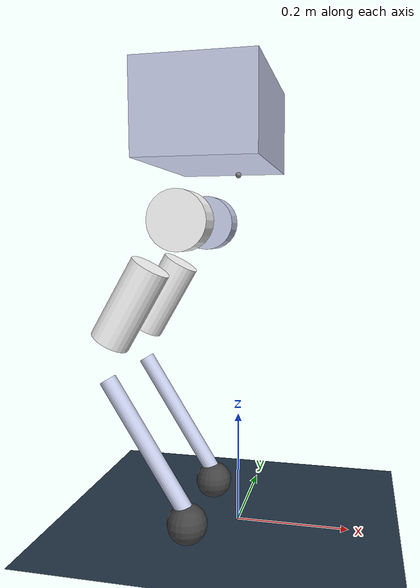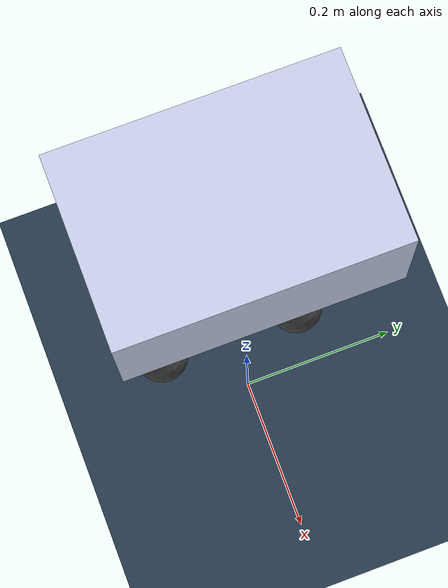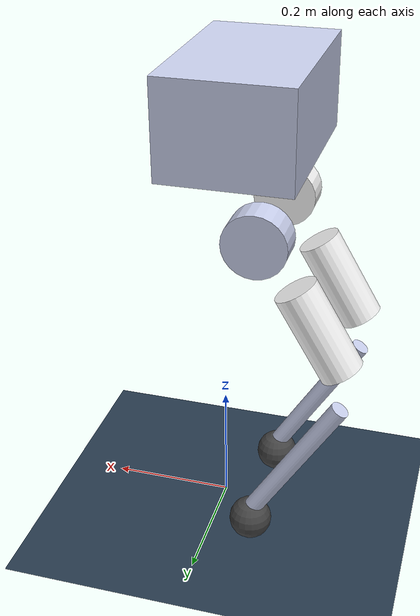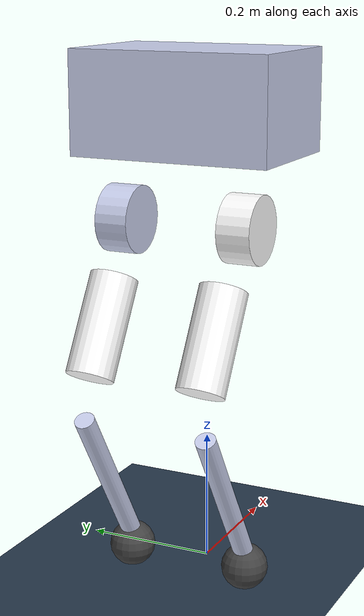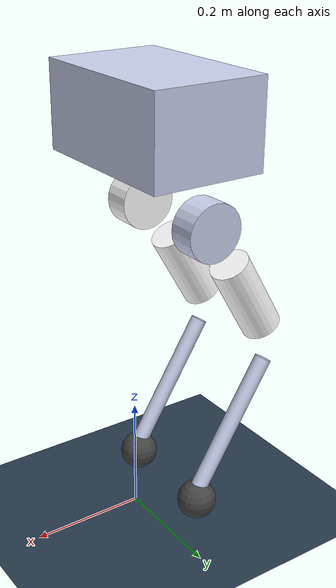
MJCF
<mujoco model="xiaotian">
  <compiler angle="radian" meshdir="../meshes/" />
  <statistic meansize="0.196962" extent="0.915486" center="-0.0586031 0 0.827513" />

  <option timestep="0.001" />

  <asset>
    <texture type="skybox" builtin="gradient" rgb1="0.3 0.5 0.7" rgb2="0 0 0" width="512"
      height="3072" />
    <texture type="2d" name="texplane" builtin="checker" mark="cross" rgb1="0.2 0.3 0.4"
      rgb2="0.1 0.15 0.2" markrgb="0.8 0.8 0.8" width="512" height="512" />
    <material name="matplane" texture="texplane" texuniform="true" reflectance="0.3" />
  </asset>
  <worldbody>
    <geom name="floor" size="15 15 1" type="plane" margin="0.001" material="matplane" />
    <light pos="0 0 5" dir="0 0 -1" directional="true" castshadow="false" diffuse="0.4 0.4 0.4"
      specular="0.1 0.1 0.1" />
    <light pos="0 0 4" dir="0 0 -1" directional="true" diffuse="0.6 0.6 0.6" specular="0.2 0.2 0.2" />

    <body name="base_Link" pos="0 0 0.625">
      <inertial pos="-0.014443 0.00030627 -0.00919854"
        quat="0.944791 -0.021413 -0.326962 -0.00258333" mass="6.5679"
        diaginertia="0.101535 0.0644894 0.0577463" />
      <site name="imu" pos="0 0 0" />
      <joint name="base_static_joint" type="free" />
      <geom size="0.1 0.15 0.075" pos="-0.04 0 0.09" type="box" rgba="0.79216 0.81961 0.93333 1" />
      <!-- 左边第一个关节位置 -->
      <body name="abad_L_Link" pos="0.0034 0.095 -0.07976">
        <inertial pos="-0.0684789 0.0474493 -3.937e-05" quat="0.579962 0.577708 0.403974 0.408291"
          mass="1.36322" diaginertia="0.00177181 0.00150822 0.0011789" />
        <joint name="abad_L_Joint" pos="0 0 0" axis="1 0 0" range="-0.38397 1.39626" />
        <geom size="0.05 0.025" pos="-0.08 0 0" quat="0.707388 0.706825 0 0" type="cylinder"
          rgba="0.79216 0.81961 0.93333 1" />
        <!-- 左边第二个关节位置 -->
        <body name="hip_L_Link" pos="-0.073 0.021 0">
          <inertial pos="-0.0255597 -0.050669 -0.0331907" quat="0.865463 0.209848 0.234518 0.389794"
            mass="2.07876" diaginertia="0.016995 0.0167546 0.00239838" />
          <joint name="hip_L_Joint" pos="0 0 0" axis="0 1 0" range="-1.01229 1.51844" />
          <geom size="0.035 0.075" pos="-0.1 -0.03 -0.14" quat="0.965093 0 0.261909 0"
            type="cylinder" rgba="1 1 1 1" />
          <!-- 左边第三个关节位置 -->
          <body name="knee_L_Link" pos="-0.15 -0.021 -0.25981">
            <inertial pos="0.0907042 -5.58315e-05 -0.150354"
              quat="0.679733 -0.187118 -0.186444 0.684243" mass="0.388742"
              diaginertia="0.00612967 0.00610684 0.00010161" />
            <joint name="knee_L_Joint" pos="0 0 0" axis="0 -1 0" range="-0.872665 1.39626" />
            <geom size="0.015 0.13" pos="0.078 0 -0.12" quat="0.962425 0 -0.271547 0"
              type="cylinder" rgba="0.79216 0.81961 0.93333 1" />
            <geom size="0.035" pos="0.15 0 -0.25566" rgba="0.26667 0.26667 0.26667 1" contype="1" conaffinity="1"/>
          </body>
        </body>
      </body>
      <!-- 右边第一个关节位置 -->
      <body name="abad_R_Link" pos="0.0034 -0.095 -0.07976">
        <inertial pos="-0.0685008 -0.0474493 0.0001094" quat="0.402888 0.409334 0.580383 0.577307"
          mass="1.36322" diaginertia="0.00177228 0.00150945 0.0011777" />
        <joint name="abad_R_Joint" pos="0 0 0" axis="1 0 0" range="-1.39626 0.38397" />
        <geom size="0.05 0.025" pos="-0.08 0 0" quat="0.707388 0.706825 0 0" type="cylinder"
          rgba="1 1 1 1" />
        <!-- 右边第二个关节位置 -->
        <body name="hip_R_Link" pos="-0.073 -0.021 0">
          <inertial pos="-0.0256618 0.050669 -0.0332169" quat="0.392645 0.233682 0.210444 0.864255"
            mass="2.07876" diaginertia="0.0169748 0.0167414 0.00240264" />
          <joint name="hip_R_Joint" pos="0 0 0" axis="0 -1 0" range="-1.51844 1.01229" />
          <geom size="0.035 0.075" pos="-0.1 0.03 -0.14" quat="0.965093 0 0.261909 0"
            type="cylinder" rgba="1 1 1 1" />
          <!-- 右边第三个关节位置 -->
          <body name="knee_R_Link" pos="-0.15 0.021 -0.25981">
            <inertial pos="0.090705 5.48153e-05 -0.150355"
              quat="0.68417 -0.186464 -0.187092 0.679808" mass="0.38874"
              diaginertia="0.00612974 0.00610688 0.000101637" />
            <joint name="knee_R_Joint" pos="0 0 0" axis="0 1 0" range="-1.39626 0.872665" />
            <geom size="0.015 0.13" pos="0.078 0 -0.12" quat="0.962425 0 -0.271547 0"
              type="cylinder" rgba="0.79216 0.81961 0.93333 1" />
            <!-- 足底位置 -->
            <geom size="0.035" pos="0.15 0 -0.25566" rgba="0.26667 0.26667 0.26667 1" contype="1" conaffinity="1"/>
          </body>
        </body>
      </body>
    </body>
  </worldbody>

  <actuator>
    <general name="abad_L_Joint" joint="abad_L_Joint" ctrlrange="-30 30" />
    <general name="hip_L_Joint" joint="hip_L_Joint" ctrlrange="-30 30" />
    <general name="knee_L_Joint" joint="knee_L_Joint" ctrlrange="-30 30" />

    <general name="abad_R_Joint" joint="abad_R_Joint" ctrlrange="-30 30" />
    <general name="hip_R_Joint" joint="hip_R_Joint" ctrlrange="-30 30" />
    <general name="knee_R_Joint" joint="knee_R_Joint" ctrlrange="-30 30" />
  </actuator>

  <sensor>
    <gyro name="imu_gyro" site="imu" noise="0.02"/>
    <accelerometer name="imu_acc" site="imu" noise="0.02"/>
    <framequat name="imu_quat" objtype="site" objname="imu" noise="0.02"/>

    <jointpos name="abad_L_Joint_pos" joint="abad_L_Joint" />
    <jointpos name="hip_L_Joint_pos" joint="hip_L_Joint" />
    <jointpos name="knee_L_Joint_pos" joint="knee_L_Joint" />
    <jointpos name="abad_R_Joint_pos" joint="abad_R_Joint" />
    <jointpos name="hip_R_Joint_pos" joint="hip_R_Joint" />
    <jointpos name="knee_R_Joint_pos" joint="knee_R_Joint" />

    <jointvel name="abad_L_Joint_vel" joint="abad_L_Joint" />
    <jointvel name="hip_L_Joint_vel" joint="hip_L_Joint" />
    <jointvel name="knee_L_Joint_vel" joint="knee_L_Joint" />
    <jointvel name="abad_R_Joint_vel" joint="abad_R_Joint" />
    <jointvel name="hip_R_Joint_vel" joint="hip_R_Joint" />
    <jointvel name="knee_R_Joint_vel" joint="knee_R_Joint" />
  </sensor>
</mujoco>
